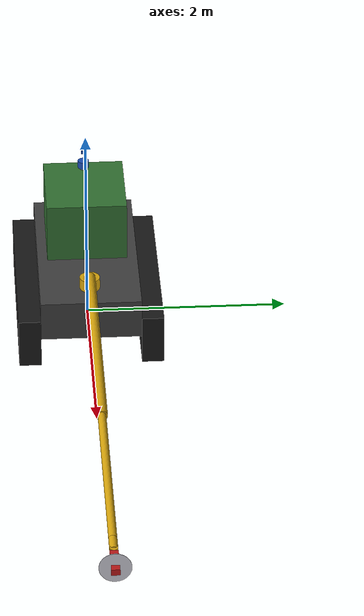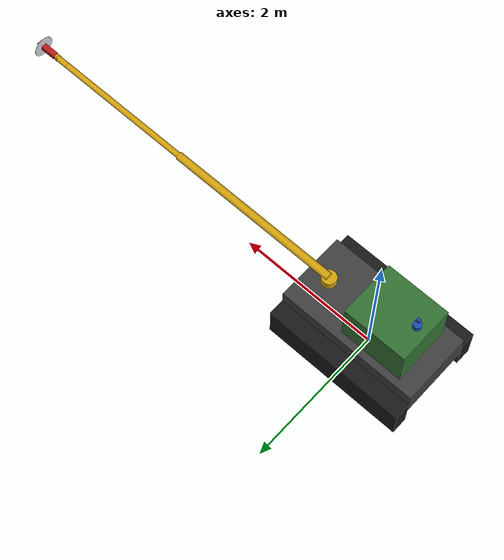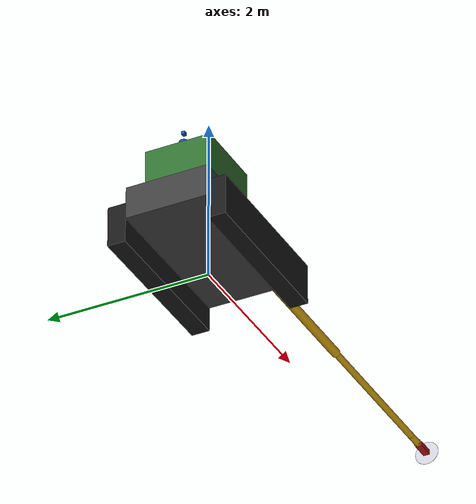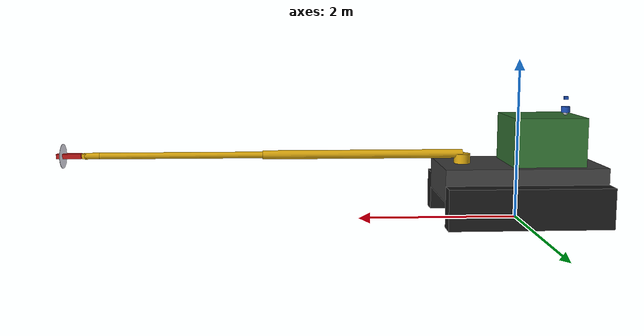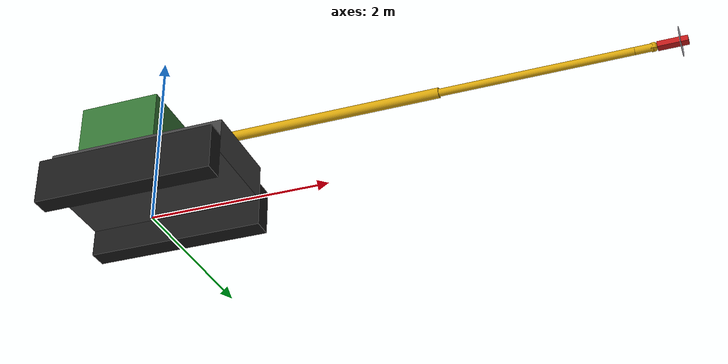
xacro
<?xml version="1.0"?>

<robot name="palm_harvester" xmlns:xacro="http://www.ros.org/wiki/xacro">

  <!-- ═══════════════════════════════════════════════════════════
       PROPERTIES
  ═══════════════════════════════════════════════════════════════ -->
  <xacro:property name="PI" value="3.14159265358979"/>

  <!-- Chassis -->
  <xacro:property name="chassis_length"  value="2.00"/>
  <xacro:property name="chassis_width"   value="1.00"/>
  <xacro:property name="chassis_height"  value="0.40"/>
  <xacro:property name="chassis_mass"    value="180.0"/>
  <xacro:property name="chassis_z"       value="0.50"/>   <!-- CoM height off ground -->

  <!-- Tracks -->
  <xacro:property name="track_length"    value="2.00"/>
  <xacro:property name="track_width"     value="0.22"/>
  <xacro:property name="track_height"    value="0.50"/>
  <xacro:property name="track_mass"      value="25.0"/>
  <xacro:property name="track_y_offset"  value="0.61"/>   <!-- half chassis_width + half track_width -->
  <xacro:property name="track_z"         value="0.25"/>   <!-- ground to track centre -->

  <!-- Sensor mast -->
  <xacro:property name="mast_radius"     value="0.025"/>
  <xacro:property name="mast_height"     value="0.60"/>
  <xacro:property name="mast_x"          value="-0.60"/>  <!-- rear-centre of chassis -->
  <xacro:property name="mast_z"          value="0.30"/>   <!-- above chassis top -->

  <!-- LiDAR -->
  <xacro:property name="lidar_radius"    value="0.055"/>
  <xacro:property name="lidar_height"    value="0.075"/>
  <xacro:property name="lidar_mass"      value="0.9"/>
  <xacro:property name="lidar_z_offset"  value="0.07"/>

  <!-- Depth camera (RealSense D455 approx) -->
  <xacro:property name="cam_x"           value="0.025"/>
  <xacro:property name="cam_y"           value="0.0"/>
  <xacro:property name="cam_z"           value="0.013"/>
  <xacro:property name="cam_mass"        value="0.12"/>

  <!-- GPS -->
  <xacro:property name="gps_radius"      value="0.03"/>
  <xacro:property name="gps_height"      value="0.02"/>
  <xacro:property name="gps_z_offset"    value="0.02"/>

  <!-- Arm base (pan joint) -->
  <xacro:property name="arm_base_radius" value="0.10"/>
  <xacro:property name="arm_base_height" value="0.12"/>
  <xacro:property name="arm_base_mass"   value="8.0"/>
  <xacro:property name="arm_base_x"      value="0.70"/>   <!-- forward on chassis -->
  <xacro:property name="arm_base_z"      value="0.26"/>   <!-- above chassis top surface -->

  <!-- Boom stage-1 (pitch link) -->
  <xacro:property name="boom1_length"    value="2.50"/>
  <xacro:property name="boom1_radius"    value="0.055"/>
  <xacro:property name="boom1_mass"      value="18.0"/>
  <!-- pitch range: 0° (horizontal) → 75° -->
  <xacro:property name="boom_pitch_min"  value="0.0"/>
  <xacro:property name="boom_pitch_max"  value="1.309"/>  <!-- 75° in rad -->

  <!-- Boom stage-2 (telescoping, prismatic) -->
  <xacro:property name="boom2_length"    value="2.00"/>   <!-- max extension -->
  <xacro:property name="boom2_radius"    value="0.040"/>
  <xacro:property name="boom2_mass"      value="10.0"/>
  <xacro:property name="boom_ext_min"    value="0.0"/>
  <xacro:property name="boom_ext_max"    value="2.00"/>

  <!-- Wrist pitch -->
  <xacro:property name="wrist_length"    value="0.18"/>
  <xacro:property name="wrist_radius"    value="0.040"/>
  <xacro:property name="wrist_mass"      value="2.5"/>
  <xacro:property name="wrist_pitch_min" value="-1.5708"/>
  <xacro:property name="wrist_pitch_max" value="1.5708"/>

  <!-- Wrist roll -->
  <xacro:property name="wrist_roll_min"  value="-1.5708"/>
  <xacro:property name="wrist_roll_max"  value="1.5708"/>

  <!-- Cutter / end-effector -->
  <xacro:property name="cutter_length"   value="0.30"/>   <!-- sickle blade reach -->
  <xacro:property name="cutter_width"    value="0.08"/>
  <xacro:property name="cutter_height"   value="0.06"/>
  <xacro:property name="cutter_mass"     value="3.5"/>    <!-- housing + motor + blade -->
  <xacro:property name="blade_mass"      value="0.80"/>
  <xacro:property name="blade_radius"    value="0.15"/>
  <xacro:property name="blade_thickness" value="0.004"/>

  <!-- Collection bin -->
  <xacro:property name="bin_length"      value="0.90"/>
  <xacro:property name="bin_width"       value="0.80"/>
  <xacro:property name="bin_height"      value="0.60"/>
  <xacro:property name="bin_mass"        value="12.0"/>
  <xacro:property name="bin_x"           value="-0.30"/>  <!-- rear of chassis -->
  <xacro:property name="bin_z"           value="0.55"/>

  <!-- ═══════════════════════════════════════════════════════════
       INERTIA MACROS
  ═══════════════════════════════════════════════════════════════ -->

  <!-- Solid box: l=length(x) w=width(y) h=height(z) -->
  <xacro:macro name="inertia_box" params="m l w h">
    <inertial>
      <mass value="${m}"/>
      <inertia
        ixx="${m*(w*w + h*h)/12.0}" ixy="0" ixz="0"
        iyy="${m*(l*l + h*h)/12.0}" iyz="0"
        izz="${m*(l*l + w*w)/12.0}"/>
    </inertial>
  </xacro:macro>

  <!-- Solid cylinder: r=radius h=height (axis Z) -->
  <xacro:macro name="inertia_cylinder" params="m r h">
    <inertial>
      <mass value="${m}"/>
      <inertia
        ixx="${m*(3*r*r + h*h)/12.0}" ixy="0" ixz="0"
        iyy="${m*(3*r*r + h*h)/12.0}" iyz="0"
        izz="${m*r*r/2.0}"/>
    </inertial>
  </xacro:macro>

  <!-- Thin disk: r=radius t=thickness (axis Z) -->
  <xacro:macro name="inertia_disk" params="m r t">
    <inertial>
      <mass value="${m}"/>
      <inertia
        ixx="${m*(3*r*r + t*t)/12.0}" ixy="0" ixz="0"
        iyy="${m*(3*r*r + t*t)/12.0}" iyz="0"
        izz="${m*r*r/2.0}"/>
    </inertial>
  </xacro:macro>

  <!-- ═══════════════════════════════════════════════════════════
       MATERIALS
  ═══════════════════════════════════════════════════════════════ -->
  <material name="chassis_grey">
    <color rgba="0.25 0.25 0.25 1.0"/>
  </material>
  <material name="track_black">
    <color rgba="0.10 0.10 0.10 1.0"/>
  </material>
  <material name="arm_yellow">
    <color rgba="0.85 0.65 0.05 1.0"/>
  </material>
  <material name="sensor_blue">
    <color rgba="0.10 0.30 0.70 1.0"/>
  </material>
  <material name="cutter_red">
    <color rgba="0.75 0.10 0.10 1.0"/>
  </material>
  <material name="bin_green">
    <color rgba="0.20 0.45 0.20 1.0"/>
  </material>
  <material name="mast_silver">
    <color rgba="0.70 0.70 0.72 1.0"/>
  </material>
  <material name="blade_steel">
    <color rgba="0.82 0.82 0.86 1.0"/>
  </material>

  <!-- ═══════════════════════════════════════════════════════════
       BASE FOOTPRINT (virtual ground frame)
  ═══════════════════════════════════════════════════════════════ -->
  <link name="base_footprint"/>

  <joint name="base_footprint_joint" type="fixed">
    <parent link="base_footprint"/>
    <child  link="base_link"/>
    <origin xyz="0 0 ${chassis_z}" rpy="0 0 0"/>
  </joint>

  <!-- ═══════════════════════════════════════════════════════════
       CHASSIS
  ═══════════════════════════════════════════════════════════════ -->
  <link name="base_link">
    <visual>
      <origin xyz="0 0 0" rpy="0 0 0"/>
      <geometry>
        <box size="${chassis_length} ${chassis_width} ${chassis_height}"/>
      </geometry>
      <material name="chassis_grey"/>
    </visual>
    <collision>
      <origin xyz="0 0 0" rpy="0 0 0"/>
      <geometry>
        <box size="${chassis_length} ${chassis_width} ${chassis_height}"/>
      </geometry>
    </collision>
    <xacro:inertia_box m="${chassis_mass}"
                       l="${chassis_length}"
                       w="${chassis_width}"
                       h="${chassis_height}"/>
  </link>

  <xacro:macro name="track" params="side y_sign">
    <link name="${side}_track_link">
      <visual>
        <origin xyz="0 0 0" rpy="0 0 0"/>
        <geometry>
          <box size="${track_length} ${track_width} ${track_height}"/>
        </geometry>
        <material name="track_black"/>
      </visual>
      <collision>
        <origin xyz="0 0 0" rpy="0 0 0"/>
        <geometry>
          <box size="${track_length} ${track_width} ${track_height}"/>
        </geometry>
      </collision>
      <xacro:inertia_box m="${track_mass}"
                         l="${track_length}"
                         w="${track_width}"
                         h="${track_height}"/>
    </link>

    <joint name="${side}_track_joint" type="continuous">
      <parent link="base_link"/>
      <child  link="${side}_track_link"/>
      <origin xyz="0 ${y_sign * track_y_offset} ${track_z - chassis_z}" rpy="0 0 0"/>
      <axis   xyz="0 1 0"/>
      <dynamics damping="0.5" friction="0.8"/>
    </joint>
  </xacro:macro>

  <xacro:track side="left"  y_sign=" 1"/>
  <xacro:track side="right" y_sign="-1"/>

  <!-- ═══════════════════════════════════════════════════════════
       IMU (onboard, chassis centre)
  ═══════════════════════════════════════════════════════════════ -->
  <link name="imu_link">
    <visual>
      <geometry><box size="0.04 0.04 0.01"/></geometry>
      <material name="sensor_blue"/>
    </visual>
    <collision>
      <geometry><box size="0.04 0.04 0.01"/></geometry>
    </collision>
    <inertial>
      <mass value="0.05"/>
      <inertia ixx="1e-6" ixy="0" ixz="0" iyy="1e-6" iyz="0" izz="1e-6"/>
    </inertial>
  </link>

  <joint name="imu_joint" type="fixed">
    <parent link="base_link"/>
    <child  link="imu_link"/>
    <origin xyz="0 0 0.01" rpy="0 0 0"/>
  </joint>

  <!-- ═══════════════════════════════════════════════════════════
       SENSOR MAST
  ═══════════════════════════════════════════════════════════════ -->
  <link name="sensor_mast_link">
    <visual>
      <origin xyz="0 0 ${mast_height/2}" rpy="0 0 0"/>
      <geometry>
        <cylinder radius="${mast_radius}" length="${mast_height}"/>
      </geometry>
      <material name="mast_silver"/>
    </visual>
    <collision>
      <origin xyz="0 0 ${mast_height/2}" rpy="0 0 0"/>
      <geometry>
        <cylinder radius="${mast_radius}" length="${mast_height}"/>
      </geometry>
    </collision>
    <xacro:inertia_cylinder m="1.2" r="${mast_radius}" h="${mast_height}"/>
  </link>

  <joint name="sensor_mast_joint" type="fixed">
    <parent link="base_link"/>
    <child  link="sensor_mast_link"/>
    <origin xyz="${mast_x} 0 ${chassis_height/2}" rpy="0 0 0"/>
  </joint>

  <!-- LiDAR  ─────────────────────────────────────────────────── -->
  <link name="lidar_link">
    <visual>
      <origin xyz="0 0 0" rpy="0 0 0"/>
      <geometry>
        <cylinder radius="${lidar_radius}" length="${lidar_height}"/>
      </geometry>
      <material name="sensor_blue"/>
    </visual>
    <collision>
      <origin xyz="0 0 0" rpy="0 0 0"/>
      <geometry>
        <cylinder radius="${lidar_radius}" length="${lidar_height}"/>
      </geometry>
    </collision>
    <xacro:inertia_cylinder m="${lidar_mass}" r="${lidar_radius}" h="${lidar_height}"/>
  </link>

  <joint name="lidar_joint" type="fixed">
    <parent link="sensor_mast_link"/>
    <child  link="lidar_link"/>
    <origin xyz="0 0 ${mast_height + lidar_z_offset}" rpy="0 0 0"/>
  </joint>

  <link name="depth_camera_link">
    <visual>
      <origin xyz="0 0 0" rpy="0 0 0"/>
      <geometry>
        <box size="0.124 0.029 0.029"/>
      </geometry>
      <material name="sensor_blue"/>
    </visual>
    <collision>
      <origin xyz="0 0 0" rpy="0 0 0"/>
      <geometry>
        <box size="0.124 0.029 0.029"/>
      </geometry>
    </collision>
    <inertial>
      <mass value="${cam_mass}"/>
      <inertia ixx="5e-5" ixy="0" ixz="0" iyy="5e-5" iyz="0" izz="5e-5"/>
    </inertial>
  </link>

  <joint name="depth_camera_joint" type="fixed">
    <parent link="sensor_mast_link"/>
    <child  link="depth_camera_link"/>
    <!-- mounted slightly forward on mast, angled 15° down for canopy view -->
    <origin xyz="0.04 0 ${mast_height - 0.05}" rpy="0 0.2618 0"/>
  </joint>

  <!-- Optical frame for depth camera -->
  <link name="depth_camera_optical_link"/>
  <joint name="depth_camera_optical_joint" type="fixed">
    <parent link="depth_camera_link"/>
    <child  link="depth_camera_optical_link"/>
    <origin xyz="0 0 0" rpy="${-PI/2} 0 ${-PI/2}"/>
  </joint>

  <!-- Pan-Tilt RGB camera (on mast top) ───────────────────────── -->
  <link name="rgb_camera_link">
    <visual>
      <origin xyz="0 0 0" rpy="0 0 0"/>
      <geometry>
        <box size="0.05 0.04 0.04"/>
      </geometry>
      <material name="sensor_blue"/>
    </visual>
    <collision>
      <geometry><box size="0.05 0.04 0.04"/></geometry>
    </collision>
    <inertial>
      <mass value="0.08"/>
      <inertia ixx="2e-5" ixy="0" ixz="0" iyy="2e-5" iyz="0" izz="2e-5"/>
    </inertial>
  </link>

  <joint name="rgb_camera_joint" type="fixed">
    <parent link="sensor_mast_link"/>
    <child  link="rgb_camera_link"/>
    <origin xyz="0 0 ${mast_height + lidar_z_offset*2 + lidar_height}" rpy="0 0 0"/>
  </joint>

  <!-- GPS antenna ──────────────────────────────────────────────── -->
  <link name="gps_link">
    <visual>
      <origin xyz="0 0 0" rpy="0 0 0"/>
      <geometry>
        <cylinder radius="${gps_radius}" length="${gps_height}"/>
      </geometry>
      <material name="mast_silver"/>
    </visual>
    <collision>
      <geometry>
        <cylinder radius="${gps_radius}" length="${gps_height}"/>
      </geometry>
    </collision>
    <inertial>
      <mass value="0.06"/>
      <inertia ixx="1e-5" ixy="0" ixz="0" iyy="1e-5" iyz="0" izz="1e-5"/>
    </inertial>
  </link>

  <joint name="gps_joint" type="fixed">
    <parent link="sensor_mast_link"/>
    <child  link="gps_link"/>
    <origin xyz="0 0 ${mast_height + gps_z_offset}" rpy="0 0 0"/>
  </joint>

  <!-- ═══════════════════════════════════════════════════════════
       COLLECTION BIN
  ═══════════════════════════════════════════════════════════════ -->
  <link name="bin_link">
    <visual>
      <origin xyz="0 0 0" rpy="0 0 0"/>
      <geometry>
        <box size="${bin_length} ${bin_width} ${bin_height}"/>
      </geometry>
      <material name="bin_green"/>
    </visual>
    <collision>
      <origin xyz="0 0 0" rpy="0 0 0"/>
      <geometry>
        <box size="${bin_length} ${bin_width} ${bin_height}"/>
      </geometry>
    </collision>
    <xacro:inertia_box m="${bin_mass}"
                       l="${bin_length}"
                       w="${bin_width}"
                       h="${bin_height}"/>
  </link>

  <joint name="bin_joint" type="fixed">
    <parent link="base_link"/>
    <child  link="bin_link"/>
    <origin xyz="${bin_x} 0 ${chassis_height/2 + bin_height/2}" rpy="0 0 0"/>
  </joint>

  <link name="arm_base_link">
    <visual>
      <origin xyz="0 0 ${arm_base_height/2}" rpy="0 0 0"/>
      <geometry>
        <cylinder radius="${arm_base_radius}" length="${arm_base_height}"/>
      </geometry>
      <material name="arm_yellow"/>
    </visual>
    <collision>
      <origin xyz="0 0 ${arm_base_height/2}" rpy="0 0 0"/>
      <geometry>
        <cylinder radius="${arm_base_radius}" length="${arm_base_height}"/>
      </geometry>
    </collision>
    <xacro:inertia_cylinder m="${arm_base_mass}"
                            r="${arm_base_radius}"
                            h="${arm_base_height}"/>
  </link>

  <joint name="arm_pan_joint" type="revolute">
    <parent link="base_link"/>
    <child  link="arm_base_link"/>
    <origin xyz="${arm_base_x} 0 ${chassis_height/2}" rpy="0 0 0"/>
    <axis   xyz="0 0 1"/>
    <limit  lower="-2.7925" upper="2.7925"
            effort="120.0"  velocity="0.5"/>
    <dynamics damping="2.0" friction="1.0"/>
  </joint>

  <link name="boom_pitch_link">
    <visual>
      <!-- Visualise as a cylinder along X (boom axis) -->
      <origin xyz="${boom1_length/2} 0 0" rpy="0 ${PI/2} 0"/>
      <geometry>
        <cylinder radius="${boom1_radius}" length="${boom1_length}"/>
      </geometry>
      <material name="arm_yellow"/>
    </visual>
    <collision>
      <origin xyz="${boom1_length/2} 0 0" rpy="0 ${PI/2} 0"/>
      <geometry>
        <cylinder radius="${boom1_radius}" length="${boom1_length}"/>
      </geometry>
    </collision>
    <inertial>
      <mass value="${boom1_mass}"/>
      <!-- Cylinder with axis along X: swap ixx ↔ izz of canonical form -->
      <inertia
        ixx="${boom1_mass*boom1_radius*boom1_radius/2.0}" ixy="0" ixz="0"
        iyy="${boom1_mass*(3*boom1_radius*boom1_radius + boom1_length*boom1_length)/12.0}" iyz="0"
        izz="${boom1_mass*(3*boom1_radius*boom1_radius + boom1_length*boom1_length)/12.0}"/>
    </inertial>
  </link>

  <joint name="boom_pitch_joint" type="revolute">
    <parent link="arm_base_link"/>
    <child  link="boom_pitch_link"/>
    <origin xyz="0 0 ${arm_base_height}" rpy="0 0 0"/>
    <axis   xyz="0 1 0"/>
    <limit  lower="${boom_pitch_min}" upper="${boom_pitch_max}"
            effort="800.0"  velocity="0.3"/>
    <dynamics damping="5.0" friction="2.0"/>
  </joint>

  <link name="boom_extend_link">
    <visual>
      <origin xyz="${boom2_length/2} 0 0" rpy="0 ${PI/2} 0"/>
      <geometry>
        <cylinder radius="${boom2_radius}" length="${boom2_length}"/>
      </geometry>
      <material name="arm_yellow"/>
    </visual>
    <collision>
      <origin xyz="${boom2_length/2} 0 0" rpy="0 ${PI/2} 0"/>
      <geometry>
        <cylinder radius="${boom2_radius}" length="${boom2_length}"/>
      </geometry>
    </collision>
    <inertial>
      <mass value="${boom2_mass}"/>
      <inertia
        ixx="${boom2_mass*boom2_radius*boom2_radius/2.0}" ixy="0" ixz="0"
        iyy="${boom2_mass*(3*boom2_radius*boom2_radius + boom2_length*boom2_length)/12.0}" iyz="0"
        izz="${boom2_mass*(3*boom2_radius*boom2_radius + boom2_length*boom2_length)/12.0}"/>
    </inertial>
  </link>

  <joint name="boom_extend_joint" type="prismatic">
    <parent link="boom_pitch_link"/>
    <child  link="boom_extend_link"/>
    <origin xyz="${boom1_length} 0 0" rpy="0 0 0"/>
    <axis   xyz="1 0 0"/>
    <limit  lower="${boom_ext_min}" upper="${boom_ext_max}"
            effort="400.0"  velocity="0.2"/>
    <dynamics damping="3.0" friction="1.5"/>
  </joint>

  <link name="wrist_pitch_link">
    <visual>
      <origin xyz="${wrist_length/2} 0 0" rpy="0 ${PI/2} 0"/>
      <geometry>
        <cylinder radius="${wrist_radius}" length="${wrist_length}"/>
      </geometry>
      <material name="arm_yellow"/>
    </visual>
    <collision>
      <origin xyz="${wrist_length/2} 0 0" rpy="0 ${PI/2} 0"/>
      <geometry>
        <cylinder radius="${wrist_radius}" length="${wrist_length}"/>
      </geometry>
    </collision>
    <inertial>
      <mass value="${wrist_mass}"/>
      <inertia
        ixx="${wrist_mass*wrist_radius*wrist_radius/2.0}" ixy="0" ixz="0"
        iyy="${wrist_mass*(3*wrist_radius*wrist_radius + wrist_length*wrist_length)/12.0}" iyz="0"
        izz="${wrist_mass*(3*wrist_radius*wrist_radius + wrist_length*wrist_length)/12.0}"/>
    </inertial>
  </link>

  <joint name="wrist_pitch_joint" type="revolute">
    <parent link="boom_extend_link"/>
    <child  link="wrist_pitch_link"/>
    <origin xyz="${boom2_length} 0 0" rpy="0 0 0"/>
    <axis   xyz="0 1 0"/>
    <limit  lower="${wrist_pitch_min}" upper="${wrist_pitch_max}"
            effort="40.0"  velocity="1.0"/>
    <dynamics damping="0.5" friction="0.3"/>
  </joint>

  <link name="wrist_roll_link">
    <visual>
      <origin xyz="0 0 0" rpy="0 0 0"/>
      <geometry>
        <cylinder radius="0.038" length="0.06"/>
      </geometry>
      <material name="arm_yellow"/>
    </visual>
    <collision>
      <geometry>
        <cylinder radius="0.038" length="0.06"/>
      </geometry>
    </collision>
    <inertial>
      <mass value="0.8"/>
      <inertia ixx="5e-4" ixy="0" ixz="0" iyy="5e-4" iyz="0" izz="3e-4"/>
    </inertial>
  </link>

  <joint name="wrist_roll_joint" type="revolute">
    <parent link="wrist_pitch_link"/>
    <child  link="wrist_roll_link"/>
    <origin xyz="${wrist_length} 0 0" rpy="0 0 0"/>
    <axis   xyz="1 0 0"/>
    <limit  lower="${wrist_roll_min}" upper="${wrist_roll_max}"
            effort="20.0"  velocity="1.5"/>
    <dynamics damping="0.2" friction="0.1"/>
  </joint>

  <!-- ═══════════════════════════════════════════════════════════
       END-EFFECTOR — CUTTER HOUSING  (fixed to wrist)
  ═══════════════════════════════════════════════════════════════ -->
  <link name="cutter_mount_link">
    <visual>
      <origin xyz="${cutter_length/2} 0 0" rpy="0 0 0"/>
      <geometry>
        <box size="${cutter_length} ${cutter_width} ${cutter_height}"/>
      </geometry>
      <material name="cutter_red"/>
    </visual>
    <collision>
      <origin xyz="${cutter_length/2} 0 0" rpy="0 0 0"/>
      <geometry>
        <box size="${cutter_length} ${cutter_width} ${cutter_height}"/>
      </geometry>
    </collision>
    <xacro:inertia_box m="${cutter_mass}"
                       l="${cutter_length}"
                       w="${cutter_width}"
                       h="${cutter_height}"/>
  </link>

  <joint name="cutter_mount_joint" type="fixed">
    <parent link="wrist_roll_link"/>
    <child  link="cutter_mount_link"/>
    <origin xyz="0.04 0 0" rpy="0 0 0"/>
  </joint>

  <link name="blade_link">
    <visual>
      <origin xyz="0 0 0" rpy="0 0 0"/>
      <geometry>
        <cylinder radius="${blade_radius}" length="${blade_thickness}"/>
      </geometry>
      <material name="blade_steel"/>
    </visual>
    <collision>
      <origin xyz="0 0 0" rpy="0 0 0"/>
      <geometry>
        <cylinder radius="${blade_radius}" length="${blade_thickness}"/>
      </geometry>
    </collision>
    <xacro:inertia_disk m="${blade_mass}" r="${blade_radius}" t="${blade_thickness}"/>
  </link>

  <joint name="blade_spin_joint" type="continuous">
    <parent link="cutter_mount_link"/>
    <child  link="blade_link"/>
    <origin xyz="${cutter_length - blade_radius*0.5} 0 0" rpy="0 ${PI/2} 0"/>
    <axis   xyz="0 0 1"/>
    <limit  effort="30.0" velocity="314.16"/>  <!-- 3000 RPM = 314 rad/s -->
    <dynamics damping="0.01" friction="0.05"/>
  </joint>

  <link name="eef_link"/>

  <joint name="eef_joint" type="fixed">
    <parent link="cutter_mount_link"/>
    <child  link="eef_link"/>
    <!-- TCP at blade tip, offset from housing origin -->
    <origin xyz="${cutter_length + 0.02} 0 0" rpy="0 0 0"/>
  </joint>

  <!-- ═══════════════════════════════════════════════════════════
       GAZEBO PLUGINS
  ═══════════════════════════════════════════════════════════════ -->

  <!-- Differential drive (skid-steer approximation for tracks) -->
  <gazebo>
    <plugin name="gazebo_ros_diff_drive" filename="libgazebo_ros_diff_drive.so">
      <ros>
        <namespace>/palm_harvester</namespace>
        <remapping>cmd_vel:=cmd_vel</remapping>
        <remapping>odom:=odom</remapping>
      </ros>
      <left_joint>left_track_joint</left_joint>
      <right_joint>right_track_joint</right_joint>
      <wheel_separation>${track_y_offset * 2}</wheel_separation>
      <wheel_diameter>${track_height}</wheel_diameter>
      <max_wheel_torque>200.0</max_wheel_torque>
      <max_wheel_acceleration>5.0</max_wheel_acceleration>
      <publish_odom>true</publish_odom>
      <publish_odom_tf>true</publish_odom_tf>
      <publish_wheel_tf>true</publish_wheel_tf>
      <odometry_frame>odom</odometry_frame>
      <robot_base_frame>base_footprint</robot_base_frame>
    </plugin>
  </gazebo>

  <!-- 3D LiDAR (Ouster OS1-32 approximation) -->
  <gazebo reference="lidar_link">
    <sensor name="ouster_lidar" type="ray">
      <always_on>true</always_on>
      <update_rate>10</update_rate>
      <visualize>false</visualize>
      <ray>
        <scan>
          <horizontal>
            <samples>1024</samples>
            <resolution>1</resolution>
            <min_angle>${-PI}</min_angle>
            <max_angle>${PI}</max_angle>
          </horizontal>
          <vertical>
            <samples>32</samples>
            <resolution>1</resolution>
            <min_angle>-0.2618</min_angle>
            <max_angle>0.2618</max_angle>
          </vertical>
        </scan>
        <range>
          <min>0.3</min>
          <max>100.0</max>
          <resolution>0.01</resolution>
        </range>
        <noise>
          <type>gaussian</type>
          <mean>0.0</mean>
          <stddev>0.01</stddev>
        </noise>
      </ray>
      <plugin name="gazebo_ros_lidar" filename="libgazebo_ros_ray_sensor.so">
        <ros>
          <namespace>/palm_harvester</namespace>
          <remapping>~/out:=scan</remapping>
        </ros>
        <output_type>sensor_msgs/PointCloud2</output_type>
        <frame_name>lidar_link</frame_name>
      </plugin>
    </sensor>
  </gazebo>

  <!-- Depth Camera -->
  <gazebo reference="depth_camera_link">
    <sensor name="realsense_d455" type="depth">
      <always_on>true</always_on>
      <update_rate>30</update_rate>
      <camera>
        <horizontal_fov>1.5010</horizontal_fov>
        <image>
          <width>848</width>
          <height>480</height>
          <format>R8G8B8</format>
        </image>
        <clip>
          <near>0.2</near>
          <far>10.0</far>
        </clip>
        <noise>
          <type>gaussian</type>
          <mean>0.0</mean>
          <stddev>0.005</stddev>
        </noise>
      </camera>
      <plugin name="gazebo_ros_depth_camera" filename="libgazebo_ros_camera.so">
        <ros>
          <namespace>/palm_harvester</namespace>
        </ros>
        <camera_name>depth_camera</camera_name>
        <frame_name>depth_camera_optical_link</frame_name>
        <hack_baseline>0.07</hack_baseline>
        <min_depth>0.2</min_depth>
        <max_depth>10.0</max_depth>
      </plugin>
    </sensor>
  </gazebo>

  <!-- IMU -->
  <gazebo reference="imu_link">
    <sensor name="imu_sensor" type="imu">
      <always_on>true</always_on>
      <update_rate>200</update_rate>
      <plugin name="gazebo_ros_imu" filename="libgazebo_ros_imu_sensor.so">
        <ros>
          <namespace>/palm_harvester</namespace>
          <remapping>~/out:=imu/data</remapping>
        </ros>
        <initial_orientation_as_reference>false</initial_orientation_as_reference>
      </plugin>
    </sensor>
  </gazebo>

  <!-- GPS -->
  <gazebo reference="gps_link">
    <sensor name="gps_sensor" type="gps">
      <always_on>true</always_on>
      <update_rate>10</update_rate>
      <gps>
        <position_sensing>
          <horizontal><noise type="gaussian"><mean>0</mean><stddev>0.01</stddev></noise></horizontal>
          <vertical><noise type="gaussian"><mean>0</mean><stddev>0.02</stddev></noise></vertical>
        </position_sensing>
      </gps>
      <plugin name="gazebo_ros_gps" filename="libgazebo_ros_gps_sensor.so">
        <ros>
          <namespace>/palm_harvester</namespace>
          <remapping>~/out:=gps/fix</remapping>
        </ros>
        <frame_name>gps_link</frame_name>
      </plugin>
    </sensor>
  </gazebo>

  <!-- ros2_control hardware interface ─────────────────────────── -->
  <ros2_control name="palm_harvester_system" type="system">
    <hardware>
      <!-- Swap for real hardware: libpalm_harvester_hardware.so -->
      <plugin>gz_ros2_control/GazeboSimSystem</plugin>
    </hardware>

    <!-- Track joints -->
    <joint name="left_track_joint">
      <command_interface name="velocity">
        <param name="min">-4.0</param>
        <param name="max"> 4.0</param>
      </command_interface>
      <state_interface name="position"/>
      <state_interface name="velocity"/>
    </joint>

    <joint name="right_track_joint">
      <command_interface name="velocity">
        <param name="min">-4.0</param>
        <param name="max"> 4.0</param>
      </command_interface>
      <state_interface name="position"/>
      <state_interface name="velocity"/>
    </joint>

    <!-- Arm joints (position control) -->
    <joint name="arm_pan_joint">
      <command_interface name="position">
        <param name="min">-2.7925</param>
        <param name="max"> 2.7925</param>
      </command_interface>
      <state_interface name="position"/>
      <state_interface name="velocity"/>
      <state_interface name="effort"/>
    </joint>

    <joint name="boom_pitch_joint">
      <command_interface name="position">
        <param name="min">${boom_pitch_min}</param>
        <param name="max">${boom_pitch_max}</param>
      </command_interface>
      <state_interface name="position"/>
      <state_interface name="velocity"/>
      <state_interface name="effort"/>
    </joint>

    <joint name="boom_extend_joint">
      <command_interface name="position">
        <param name="min">${boom_ext_min}</param>
        <param name="max">${boom_ext_max}</param>
      </command_interface>
      <state_interface name="position"/>
      <state_interface name="velocity"/>
      <state_interface name="effort"/>
    </joint>

    <joint name="wrist_pitch_joint">
      <command_interface name="position">
        <param name="min">${wrist_pitch_min}</param>
        <param name="max">${wrist_pitch_max}</param>
      </command_interface>
      <state_interface name="position"/>
      <state_interface name="velocity"/>
      <state_interface name="effort"/>
    </joint>

    <joint name="wrist_roll_joint">
      <command_interface name="position">
        <param name="min">${wrist_roll_min}</param>
        <param name="max">${wrist_roll_max}</param>
      </command_interface>
      <state_interface name="position"/>
      <state_interface name="velocity"/>
      <state_interface name="effort"/>
    </joint>

    <!-- Blade: velocity control (on/off + speed via hardware) -->
    <joint name="blade_spin_joint">
      <command_interface name="velocity">
        <param name="min">0.0</param>
        <param name="max">314.16</param>
      </command_interface>
      <state_interface name="velocity"/>
      <state_interface name="effort"/>
    </joint>
  </ros2_control>

  <!-- gz_ros2_control plugin (Gazebo Sim / gz-sim) -->
  <gazebo>
    <plugin filename="gz_ros2_control-system"
            name="gz_ros2_control::GazeboSimROS2ControlPlugin">
      <parameters>$(find robot_simulation)/config/ros2_control.yaml</parameters>
    </plugin>
  </gazebo>

</robot>
